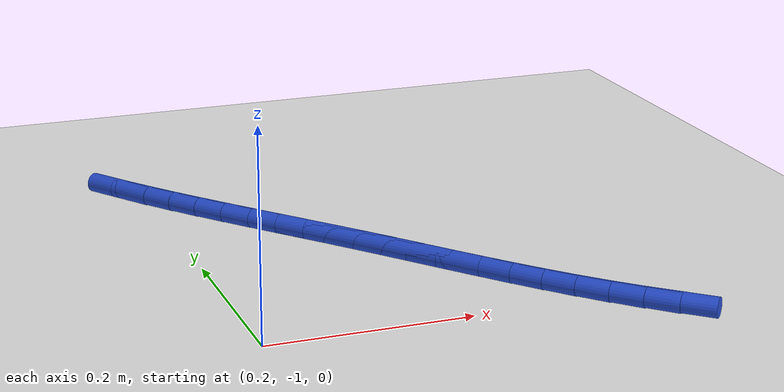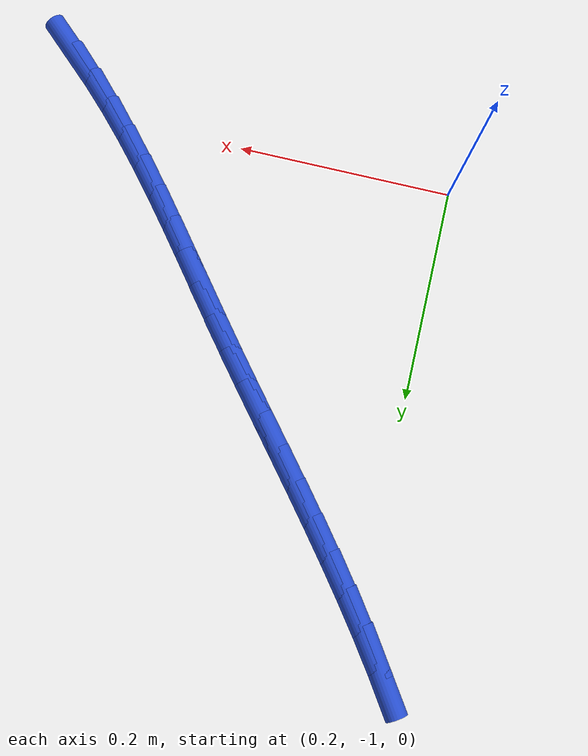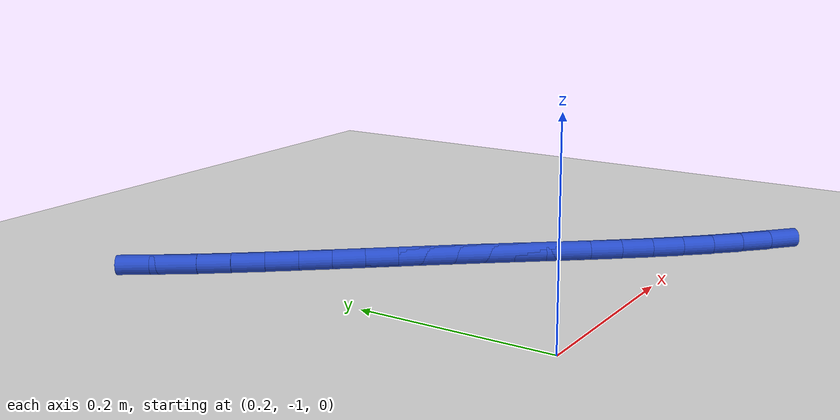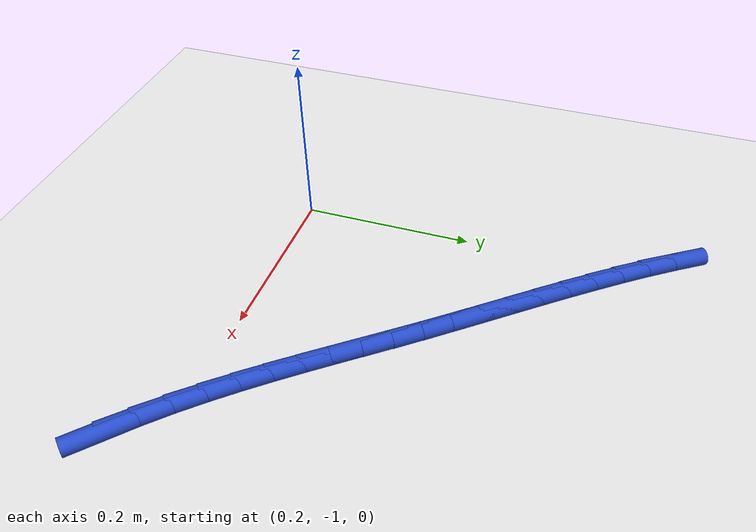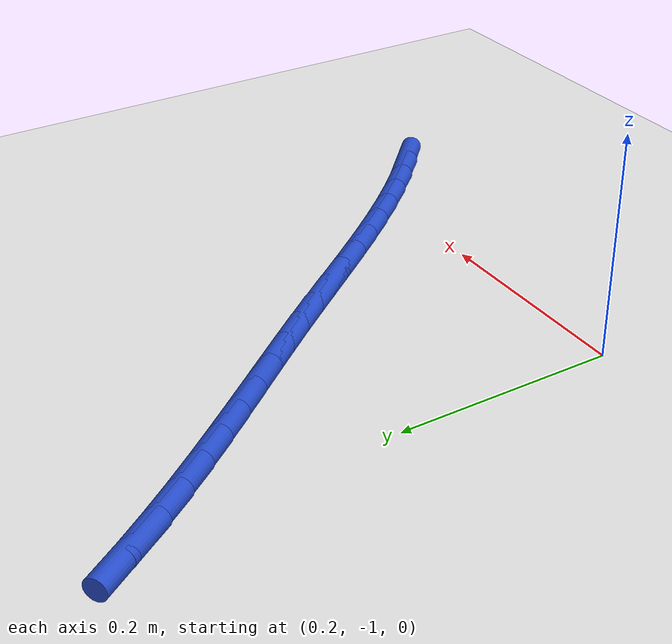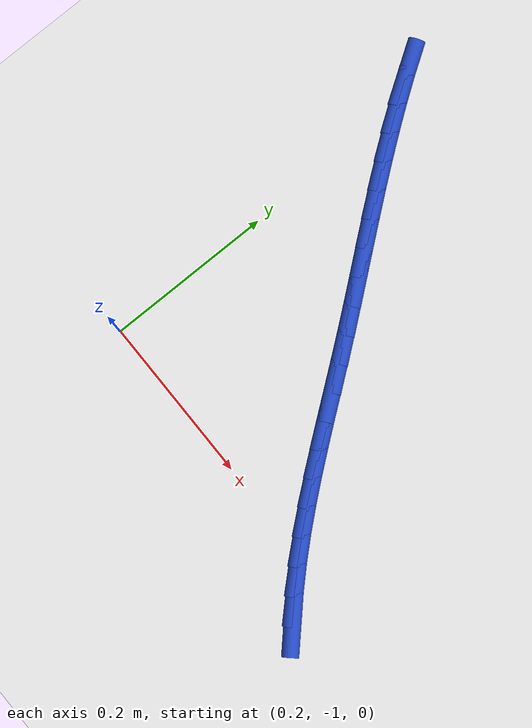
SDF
<sdf version="1.6">
 <world name="default">
  <model name="ground_plane">
   <static>1</static>
   <link name="link">
    <collision name="collision">
     <geometry><plane><normal>0 0 1</normal><size>100 100</size></plane></geometry>
     <surface><friction><ode><mu>100</mu><mu2>50</mu2></ode></friction></surface>
    </collision>
    <visual name="visual">
     <cast_shadows>0</cast_shadows>
     <geometry><plane><normal>0 0 1</normal><size>100 100</size></plane></geometry>
     <material>
      <script><uri>file://media/materials/scripts/gazebo.material</uri><name>Gazebo/WhiteGlow</name></script>
     </material>
    </visual>
   </link>
  </model>
  <model name="line">
   <link name="link_203">
    <pose>0.5755753193820585 -1.0532372921005446 0.01 0 1.57 -0.7493652260654304</pose>
    <collision name="collision">
     <geometry><cylinder><radius>0.01</radius><length>0.08</length></cylinder></geometry>
    </collision>
    <visual name="visual">
     <material>
      <script><name>Gazebo/Blue</name><uri>file://media/materials/scripts/gazebo.material</uri></script>
     </material>
     <geometry><cylinder><radius>0.01</radius><length>0.08</length></cylinder></geometry>
    </visual>
   </link>
   <link name="link_204">
    <pose>0.5510937081713786 -1.030459319881147 0.01 0 1.57 -0.7901150212102545</pose>
    <collision name="collision">
     <geometry><cylinder><radius>0.01</radius><length>0.08</length></cylinder></geometry>
    </collision>
    <visual name="visual">
     <material>
      <script><name>Gazebo/Blue</name><uri>file://media/materials/scripts/gazebo.material</uri></script>
     </material>
     <geometry><cylinder><radius>0.01</radius><length>0.08</length></cylinder></geometry>
    </visual>
   </link>
   <link name="link_205">
    <pose>0.5276766497717572 -1.0068203030191862 0.01 0 1.57 -0.8252468996104783</pose>
    <collision name="collision">
     <geometry><cylinder><radius>0.01</radius><length>0.08</length></cylinder></geometry>
    </collision>
    <visual name="visual">
     <material>
      <script><name>Gazebo/Blue</name><uri>file://media/materials/scripts/gazebo.material</uri></script>
     </material>
     <geometry><cylinder><radius>0.01</radius><length>0.08</length></cylinder></geometry>
    </visual>
   </link>
   <link name="link_206">
    <pose>0.505167576390878 -0.9824418306029158 0.01 0 1.57 -0.854558400693476</pose>
    <collision name="collision">
     <geometry><cylinder><radius>0.01</radius><length>0.08</length></cylinder></geometry>
    </collision>
    <visual name="visual">
     <material>
      <script><name>Gazebo/Blue</name><uri>file://media/materials/scripts/gazebo.material</uri></script>
     </material>
     <geometry><cylinder><radius>0.01</radius><length>0.08</length></cylinder></geometry>
    </visual>
   </link>
   <link name="link_207">
    <pose>0.4834099202364229 -0.957445491720588 0.01 0 1.57 -0.8779370972862046</pose>
    <collision name="collision">
     <geometry><cylinder><radius>0.01</radius><length>0.08</length></cylinder></geometry>
    </collision>
    <visual name="visual">
     <material>
      <script><name>Gazebo/Blue</name><uri>file://media/materials/scripts/gazebo.material</uri></script>
     </material>
     <geometry><cylinder><radius>0.01</radius><length>0.08</length></cylinder></geometry>
    </visual>
   </link>
   <link name="link_208">
    <pose>0.46224711351607456 -0.9319528754604551 0.01 0 1.57 -0.8953325658100909</pose>
    <collision name="collision">
     <geometry><cylinder><radius>0.01</radius><length>0.08</length></cylinder></geometry>
    </collision>
    <visual name="visual">
     <material>
      <script><name>Gazebo/Blue</name><uri>file://media/materials/scripts/gazebo.material</uri></script>
     </material>
     <geometry><cylinder><radius>0.01</radius><length>0.08</length></cylinder></geometry>
    </visual>
   </link>
   <link name="link_209">
    <pose>0.44152258843751685 -0.9060855709107715 0.01 0 1.57 -0.9067322120375918</pose>
    <collision name="collision">
     <geometry><cylinder><radius>0.01</radius><length>0.08</length></cylinder></geometry>
    </collision>
    <visual name="visual">
     <material>
      <script><name>Gazebo/Blue</name><uri>file://media/materials/scripts/gazebo.material</uri></script>
     </material>
     <geometry><cylinder><radius>0.01</radius><length>0.08</length></cylinder></geometry>
    </visual>
   </link>
   <link name="link_210">
    <pose>0.42107977720843165 -0.8799651671597886 0.01 0 1.57 -0.9121426706774316</pose>
    <collision name="collision">
     <geometry><cylinder><radius>0.01</radius><length>0.08</length></cylinder></geometry>
    </collision>
    <visual name="visual">
     <material>
      <script><name>Gazebo/Blue</name><uri>file://media/materials/scripts/gazebo.material</uri></script>
     </material>
     <geometry><cylinder><radius>0.01</radius><length>0.08</length></cylinder></geometry>
    </visual>
   </link>
   <link name="link_211">
    <pose>0.400762112036502 -0.8537132532957596 0.01 0 1.57 -0.9115775007849066</pose>
    <collision name="collision">
     <geometry><cylinder><radius>0.01</radius><length>0.08</length></cylinder></geometry>
    </collision>
    <visual name="visual">
     <material>
      <script><name>Gazebo/Blue</name><uri>file://media/materials/scripts/gazebo.material</uri></script>
     </material>
     <geometry><cylinder><radius>0.01</radius><length>0.08</length></cylinder></geometry>
    </visual>
   </link>
   <link name="link_212">
    <pose>0.3804130251294106 -0.8274514184069374 0.01 0 1.57 -0.9050673596390181</pose>
    <collision name="collision">
     <geometry><cylinder><radius>0.01</radius><length>0.08</length></cylinder></geometry>
    </collision>
    <visual name="visual">
     <material>
      <script><name>Gazebo/Blue</name><uri>file://media/materials/scripts/gazebo.material</uri></script>
     </material>
     <geometry><cylinder><radius>0.01</radius><length>0.08</length></cylinder></geometry>
    </visual>
   </link>
   <link name="link_213">
    <pose>0.35987637511605947 -0.8013009327203522 0.01 0 1.57 -0.8955310441861863</pose>
    <collision name="collision">
     <geometry><cylinder><radius>0.01</radius><length>0.08</length></cylinder></geometry>
    </collision>
    <visual name="visual">
     <material>
      <script><name>Gazebo/Blue</name><uri>file://media/materials/scripts/gazebo.material</uri></script>
     </material>
     <geometry><cylinder><radius>0.01</radius><length>0.08</length></cylinder></geometry>
    </visual>
   </link>
   <link name="link_214">
    <pose>0.3390734292087286 -0.7753251833314672 0.01 0 1.57 -0.8892224641888716</pose>
    <collision name="collision">
     <geometry><cylinder><radius>0.01</radius><length>0.08</length></cylinder></geometry>
    </collision>
    <visual name="visual">
     <material>
      <script><name>Gazebo/Blue</name><uri>file://media/materials/scripts/gazebo.material</uri></script>
     </material>
     <geometry><cylinder><radius>0.01</radius><length>0.08</length></cylinder></geometry>
    </visual>
   </link>
   <link name="link_215">
    <pose>0.31809218105634846 -0.7494628857832237 0.01 0 1.57 -0.8869422251824903</pose>
    <collision name="collision">
     <geometry><cylinder><radius>0.01</radius><length>0.08</length></cylinder></geometry>
    </collision>
    <visual name="visual">
     <material>
      <script><name>Gazebo/Blue</name><uri>file://media/materials/scripts/gazebo.material</uri></script>
     </material>
     <geometry><cylinder><radius>0.01</radius><length>0.08</length></cylinder></geometry>
    </visual>
   </link>
   <link name="link_216">
    <pose>0.2970422845359917 -0.7236365589413939 0.01 0 1.57 -0.8886830151868387</pose>
    <collision name="collision">
     <geometry><cylinder><radius>0.01</radius><length>0.08</length></cylinder></geometry>
    </collision>
    <visual name="visual">
     <material>
      <script><name>Gazebo/Blue</name><uri>file://media/materials/scripts/gazebo.material</uri></script>
     </material>
     <geometry><cylinder><radius>0.01</radius><length>0.08</length></cylinder></geometry>
    </visual>
   </link>
   <link name="link_217">
    <pose>0.27603339352472966 -0.6977687216717477 0.01 0 1.57 -0.8944438776972904</pose>
    <collision name="collision">
     <geometry><cylinder><radius>0.01</radius><length>0.08</length></cylinder></geometry>
    </collision>
    <visual name="visual">
     <material>
      <script><name>Gazebo/Blue</name><uri>file://media/materials/scripts/gazebo.material</uri></script>
     </material>
     <geometry><cylinder><radius>0.01</radius><length>0.08</length></cylinder></geometry>
    </visual>
   </link>
   <link name="link_218">
    <pose>0.25517516189963385 -0.6717818928400558 0.01 0 1.57 -0.9042293583073291</pose>
    <collision name="collision">
     <geometry><cylinder><radius>0.01</radius><length>0.08</length></cylinder></geometry>
    </collision>
    <visual name="visual">
     <material>
      <script><name>Gazebo/Blue</name><uri>file://media/materials/scripts/gazebo.material</uri></script>
     </material>
     <geometry><cylinder><radius>0.01</radius><length>0.08</length></cylinder></geometry>
    </visual>
   </link>
   <link name="link_219">
    <pose>0.23457724353777623 -0.6455985913120895 0.01 0 1.57 -0.9180467145412083</pose>
    <collision name="collision">
     <geometry><cylinder><radius>0.01</radius><length>0.08</length></cylinder></geometry>
    </collision>
    <visual name="visual">
     <material>
      <script><name>Gazebo/Blue</name><uri>file://media/materials/scripts/gazebo.material</uri></script>
     </material>
     <geometry><cylinder><radius>0.01</radius><length>0.08</length></cylinder></geometry>
    </visual>
   </link>
   <link name="link_220">
    <pose>0.21434929231622837 -0.619141335953619 0.01 0 1.57 -0.9359011581564699</pose>
    <collision name="collision">
     <geometry><cylinder><radius>0.01</radius><length>0.08</length></cylinder></geometry>
    </collision>
    <visual name="visual">
     <material>
      <script><name>Gazebo/Blue</name><uri>file://media/materials/scripts/gazebo.material</uri></script>
     </material>
     <geometry><cylinder><radius>0.01</radius><length>0.08</length></cylinder></geometry>
    </visual>
   </link>
   <link name="link_221">
    <pose>0.19460096211206204 -0.5923326456304151 0.01 0 1.57 -0.9577891063234352</pose>
    <collision name="collision">
     <geometry><cylinder><radius>0.01</radius><length>0.08</length></cylinder></geometry>
    </collision>
    <visual name="visual">
     <material>
      <script><name>Gazebo/Blue</name><uri>file://media/materials/scripts/gazebo.material</uri></script>
     </material>
     <geometry><cylinder><radius>0.01</radius><length>0.08</length></cylinder></geometry>
    </visual>
   </link>
   <link name="link_222">
    <pose>0.175441906802349 -0.5650950392082487 0.01 0 1.57 -0.9836894838742608</pose>
    <collision name="collision">
     <geometry><cylinder><radius>0.01</radius><length>0.08</length></cylinder></geometry>
    </collision>
    <visual name="visual">
     <material>
      <script><name>Gazebo/Blue</name><uri>file://media/materials/scripts/gazebo.material</uri></script>
     </material>
     <geometry><cylinder><radius>0.01</radius><length>0.08</length></cylinder></geometry>
    </visual>
   </link>
  </model>
 </world>
</sdf>
